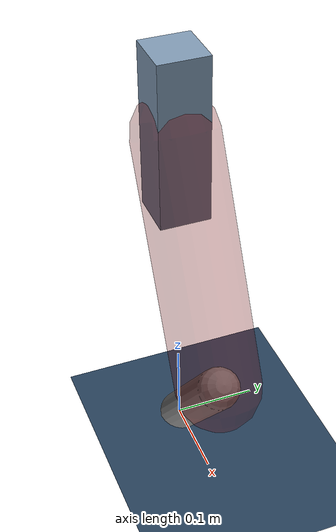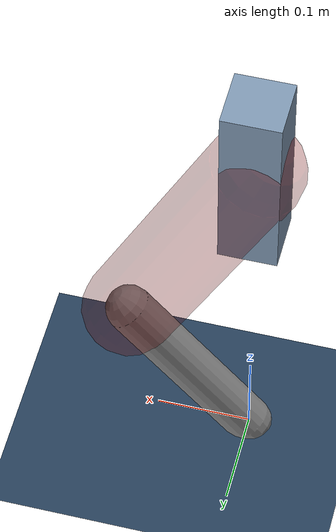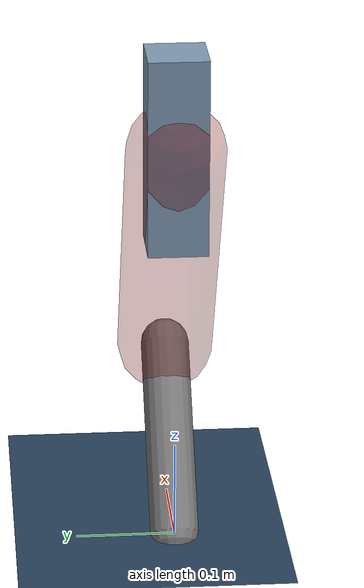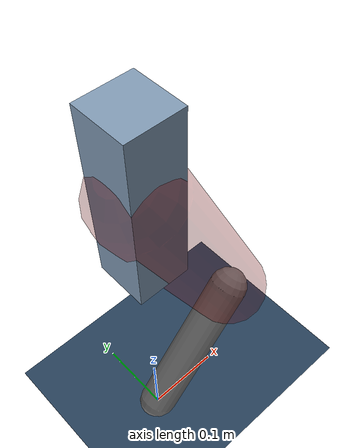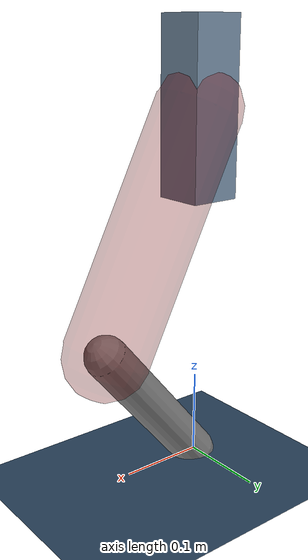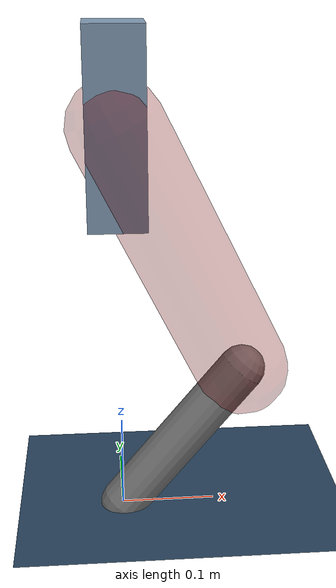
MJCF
<mujoco model="Hopper2D">
	<compiler inertiafromgeom="true" angle="radian" />
	<option timestep="0.001" integrator="implicit" cone="elliptic" solver="Newton" tolerance="1e-10" />

	<default>
		<geom contype="1" conaffinity="1" condim="3" friction="2 0.005 0.0001" solref="0.005 1" />
		<joint limited="true" damping="0.1" />
	</default>

	<asset>
		<texture name="skybox" type="skybox" builtin="gradient" rgb1=".4 .6 .8" rgb2="0 0 0" width="800" height="800" />
		<texture name="grid" type="2d" builtin="checker" rgb1=".1 .2 .3" rgb2=".2 .3 .4" width="300" height="300" mark="edge" markrgb=".2 .3 .4" />
		<material name="ground" texture="grid" texrepeat="1 1" texuniform="true" reflectance="0.1" />
		<material name="leg" rgba="0.5 0.6 0.7 1" />
	</asset>

	<worldbody>

		<geom name="floor" type="plane" size="5 5 0.25" material="ground" />

		<light directional="false" diffuse="0.8 0.8 0.8" specular="0.3 0.3 0.3" pos="0 0 2" dir="0 0 -1" />
		<light mode="targetbodycom" target="base" directional="false" diffuse="0.8 0.8 0.8" specular="0.3 0.3 0.3" pos="0 0 2" dir="0 0 -1" />

		<camera name="fixed" pos="0 -2 1" xyaxes="1 0 0 0 0 1" />
		<camera name="tracking" mode="trackcom" pos="0 -3 1" />

		<body name="root" pos="0 0 0.41928970205444466">
			<joint name="slide_x" type="slide" axis="1 0 0" range="-100 100" />
			<joint name="slide_z" type="slide" axis="0 0 1" range="0 10" />

			<body name="base" pos="0 0 0">
				<geom name="torso" type="box" size="0.03 0.03 0.1" mass="1.9749999999999999" material="leg" />

				<body name="link1" pos="0 0 0" euler="0 1.108833800081123 0">
					<joint type="hinge" axis="0 -1 0" pos="0 0 0" name="hinge1" limited="true" range="-3.14 3.14" stiffness="0" damping="0.1" />
					<geom name="thigh" type="capsule" fromto="0 0 0 0.29205101150566737 0 0" size="0.05" rgba="0.5 0 0 0.3" mass="0.9673377310653019" />

					<body name="link2" pos="0.29205101150566737 0 0" euler="0 1.1515410249162452 0">
						<joint type="hinge" axis="0 -1 0" pos="0 0 0" name="hinge2" limited="true" range="-3.14 3.14" stiffness="0" damping="0.1" />
						<geom name="shank" type="capsule" fromto="0 0 0 0.2045997469953813 0 0" size="0.025" mass="0.40477979759630506" />

					</body>
				</body>
			</body>
		</body>
	</worldbody>

	<actuator>
		<motor name="torque1" joint="hinge1" ctrlrange="-59.810759381801574 59.810759381801574" ctrllimited="true" gear="1" />
		<motor name="torque2" joint="hinge2" ctrlrange="-47.26836308065758 47.26836308065758" ctrllimited="true" gear="1" />
	</actuator>
</mujoco>
